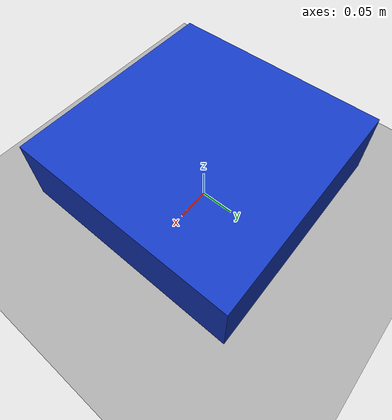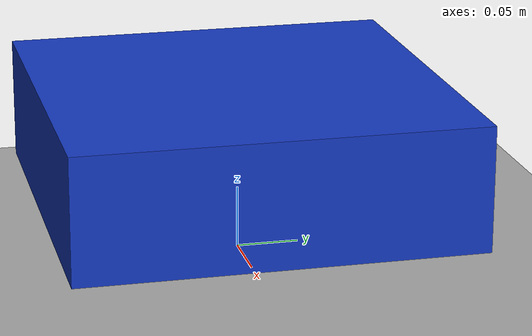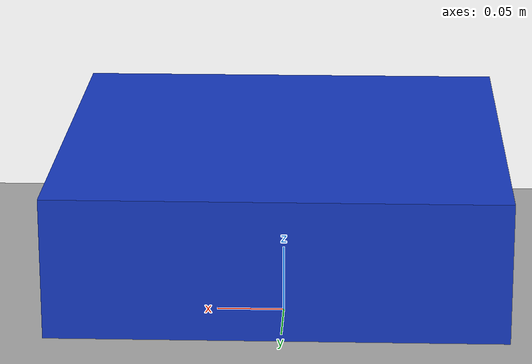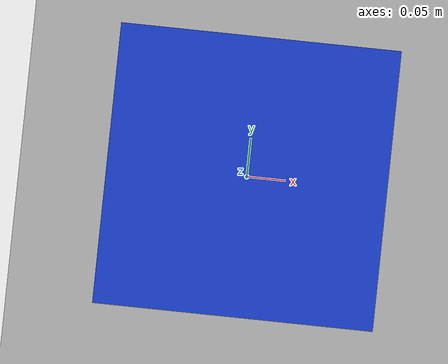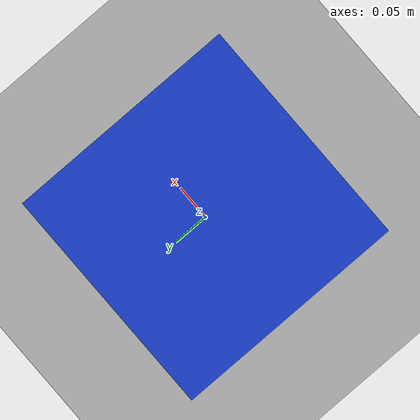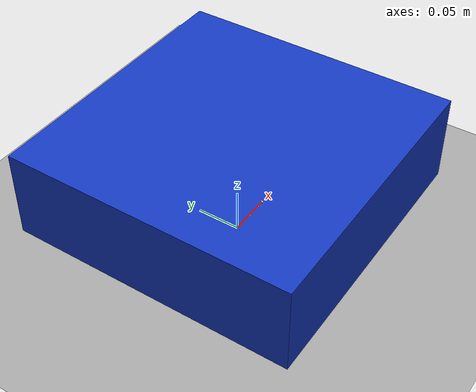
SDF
<?xml version="1.0"?>
<sdf version="1.9">
  <world name="flightcore_world">
    <gravity>0 0 -9.80665</gravity>
    <physics name="flightcore_lockstep_physics" type="dart">
      <max_step_size>0.001</max_step_size>
      <real_time_factor>0</real_time_factor>
    </physics>

    <plugin filename="gz-sim-physics-system" name="gz::sim::systems::Physics"/>
    <plugin filename="gz-sim-user-commands-system" name="gz::sim::systems::UserCommands"/>
    <plugin filename="gz-sim-scene-broadcaster-system" name="gz::sim::systems::SceneBroadcaster"/>

    <light type="directional" name="sun">
      <cast_shadows>true</cast_shadows>
      <pose>0 0 10 0 0 0</pose>
      <diffuse>0.8 0.8 0.8 1</diffuse>
      <specular>0.2 0.2 0.2 1</specular>
      <direction>-0.5 0.1 -0.9</direction>
    </light>

    <model name="ground_plane">
      <static>true</static>
      <link name="link">
        <collision name="collision">
          <geometry><plane><normal>0 0 1</normal><size>100 100</size></plane></geometry>
        </collision>
        <visual name="visual">
          <geometry><plane><normal>0 0 1</normal><size>100 100</size></plane></geometry>
          <material><ambient>0.65 0.65 0.65 1</ambient><diffuse>0.65 0.65 0.65 1</diffuse></material>
        </visual>
      </link>
    </model>

    <model name="flightcore_quad">
      <!-- Gazebo 采用 ENU/FLU；初始偏航 90° 后映射到 FlightCore NED/FRD 的零姿态。 -->
      <pose>0 0 0.09 0 0 1.5707963267948966</pose>
      <link name="base_link">
        <inertial>
          <mass>1.0</mass>
          <inertia>
            <ixx>0.006721</ixx><iyy>0.008041</iyy><izz>0.014279</izz>
            <ixy>0</ixy><ixz>0</ixz><iyz>0</iyz>
          </inertia>
        </inertial>
        <collision name="body_collision">
          <geometry><box><size>0.32 0.32 0.10</size></box></geometry>
          <surface><friction><ode><mu>0.8</mu><mu2>0.8</mu2></ode></friction></surface>
        </collision>
        <visual name="body_visual">
          <geometry><box><size>0.32 0.32 0.10</size></box></geometry>
          <material><ambient>0.08 0.22 0.75 1</ambient><diffuse>0.08 0.22 0.75 1</diffuse></material>
        </visual>
      </link>

      <plugin filename="libflightcore_gazebo_system.so" name="flightcore_gazebo::FlightCoreGazeboSystem">
        <base_link>base_link</base_link>
        <world_name>flightcore_world</world_name>
        <max_thrust_n>4.179446268</max_thrust_n>
        <max_reaction_torque_nm>0.055562</max_reaction_torque_nm>
        <motor_arm_length_m>0.2275</motor_arm_length_m>
        <!-- 开发期轻量 plant 的各向同性线性气动阻尼，单位 N/(m/s)。 -->
        <linear_drag_n_per_mps>1.2</linear_drag_n_per_mps>
        <gps_rate_divider>200</gps_rate_divider>
        <service_timeout_ms>5000</service_timeout_ms>
      </plugin>
    </model>
  </world>
</sdf>
